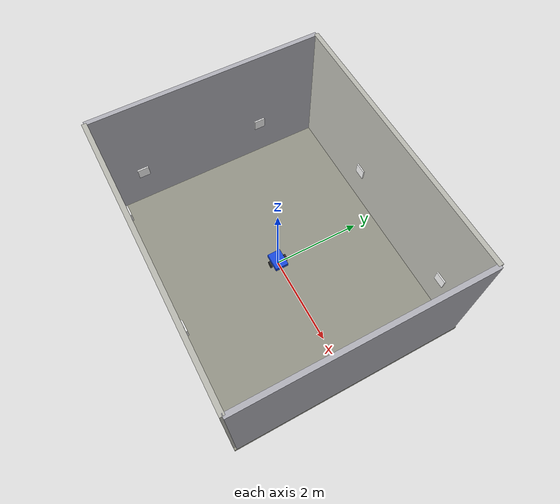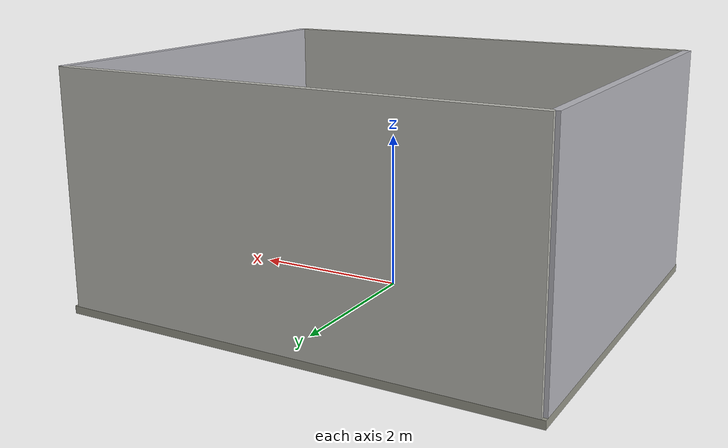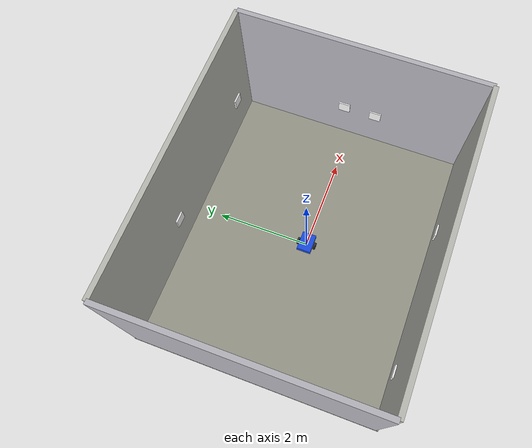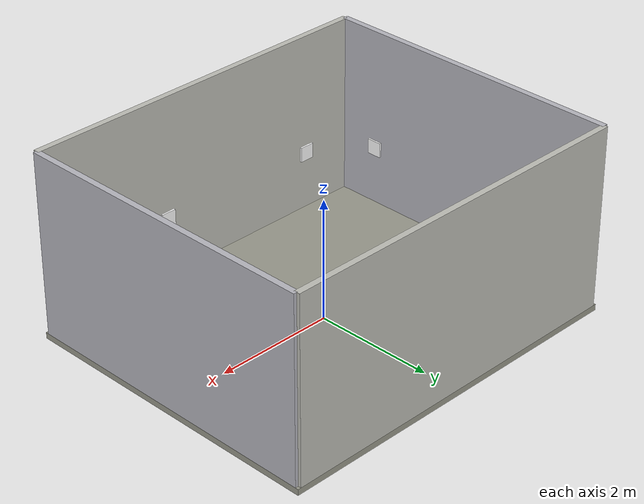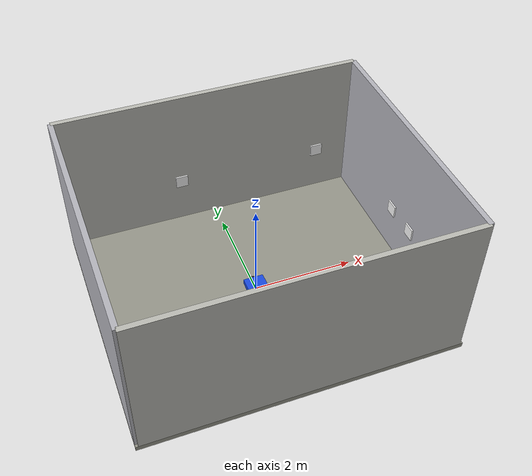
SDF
<?xml version="1.0" ?>
<sdf version="1.8">
<world name="ar_room">

  <!-- ── Physics & core plugins ─────────────────────────────────────── -->
  <physics name="1ms" type="ignored">
    <max_step_size>0.004</max_step_size>
    <real_time_factor>1.0</real_time_factor>
  </physics>

  <plugin filename="libignition-gazebo-physics-system.so"
          name="ignition::gazebo::systems::Physics"/>
  <plugin filename="libignition-gazebo-user-commands-system.so"
          name="ignition::gazebo::systems::UserCommands"/>
  <plugin filename="libignition-gazebo-scene-broadcaster-system.so"
          name="ignition::gazebo::systems::SceneBroadcaster"/>
  <plugin filename="libignition-gazebo-sensors-system.so"
          name="ignition::gazebo::systems::Sensors">
    <render_engine>ogre2</render_engine>
  </plugin>

  <!-- ── Lighting ───────────────────────────────────────────────────── -->
  <light type="directional" name="sun">
    <cast_shadows>true</cast_shadows>
    <pose>0 0 10 0 0 0</pose>
    <diffuse>0.85 0.85 0.85 1</diffuse>
    <specular>0.2 0.2 0.2 1</specular>
    <direction>-0.5 0.1 -0.9</direction>
  </light>
  <light type="point" name="room_light">
    <pose>0 0 2.8 0 0 0</pose>
    <diffuse>0.7 0.7 0.7 1</diffuse>
    <specular>0.1 0.1 0.1 1</specular>
    <attenuation>
      <range>10</range>
      <constant>0.5</constant>
      <linear>0.01</linear>
      <quadratic>0.001</quadratic>
    </attenuation>
  </light>

  <!-- ── Floor ──────────────────────────────────────────────────────── -->
  <model name="floor">
    <static>true</static>
    <pose>0 0 -0.05 0 0 0</pose>
    <link name="link">
      <visual name="visual">
        <geometry><box><size>6.2 5.2 0.10</size></box></geometry>
        <material>
          <ambient>0.60 0.60 0.55 1</ambient>
          <diffuse>0.60 0.60 0.55 1</diffuse>
          <specular>0.05 0.05 0.05 1</specular>
        </material>
      </visual>
      <collision name="collision">
        <geometry><box><size>6.2 5.2 0.10</size></box></geometry>
        <surface>
          <friction><ode><mu>1.0</mu><mu2>1.0</mu2></ode></friction>
        </surface>
      </collision>
    </link>
  </model>

  <!-- ── Walls ──────────────────────────────────────────────────────── -->
  <!-- South wall  y = -2.5 -->
  <model name="wall_south">
    <static>true</static>
    <pose>0 -2.55 1.5 0 0 0</pose>
    <link name="link">
      <visual name="v">
        <geometry><box><size>6.1 0.10 3.0</size></box></geometry>
        <material><ambient>0.75 0.75 0.72 1</ambient><diffuse>0.75 0.75 0.72 1</diffuse></material>
      </visual>
      <collision name="c">
        <geometry><box><size>6.1 0.10 3.0</size></box></geometry>
      </collision>
    </link>
  </model>

  <!-- North wall  y = +2.5 -->
  <model name="wall_north">
    <static>true</static>
    <pose>0 2.55 1.5 0 0 0</pose>
    <link name="link">
      <visual name="v">
        <geometry><box><size>6.1 0.10 3.0</size></box></geometry>
        <material><ambient>0.75 0.75 0.72 1</ambient><diffuse>0.75 0.75 0.72 1</diffuse></material>
      </visual>
      <collision name="c">
        <geometry><box><size>6.1 0.10 3.0</size></box></geometry>
      </collision>
    </link>
  </model>

  <!-- West wall  x = -3.0 -->
  <model name="wall_west">
    <static>true</static>
    <pose>-3.05 0 1.5 0 0 0</pose>
    <link name="link">
      <visual name="v">
        <geometry><box><size>0.10 5.1 3.0</size></box></geometry>
        <material><ambient>0.72 0.72 0.75 1</ambient><diffuse>0.72 0.72 0.75 1</diffuse></material>
      </visual>
      <collision name="c">
        <geometry><box><size>0.10 5.1 3.0</size></box></geometry>
      </collision>
    </link>
  </model>

  <!-- East wall  x = +3.0 -->
  <model name="wall_east">
    <static>true</static>
    <pose>3.05 0 1.5 0 0 0</pose>
    <link name="link">
      <visual name="v">
        <geometry><box><size>0.10 5.1 3.0</size></box></geometry>
        <material><ambient>0.72 0.72 0.75 1</ambient><diffuse>0.72 0.72 0.75 1</diffuse></material>
      </visual>
      <collision name="c">
        <geometry><box><size>0.10 5.1 3.0</size></box></geometry>
      </collision>
    </link>
  </model>

  <!-- tag 0 — South wall, left   (-1.50, -2.40, 1.0) -->
  <model name="tag_S1">
    <static>true</static>
    <pose>-2.10 -2.46 1.0 0 0 0</pose>
    <link name="link">
      <visual name="v">
        <geometry><box><size>0.25 0.03 0.25</size></box></geometry>
        <material>
          <ambient>1 1 1 1</ambient>
          <diffuse>1 1 1 1</diffuse>
          <specular>0 0 0 1</specular>
          <pbr>
            <metal>
              <albedo_map>file://materials/textures/aruco_id0.png</albedo_map>
            </metal>
          </pbr>
        </material>
      </visual>
    </link>
  </model>

  <!-- tag 1 — South wall, right  ( 1.20, -2.40, 1.0) -->
  <model name="tag_S2">
    <static>true</static>
    <pose>0.8 -2.46 1.0 0 0 0</pose>
    <link name="link">
      <visual name="v">
        <geometry><box><size>0.25 0.03 0.25</size></box></geometry>
        <material>
          <ambient>1 1 1 1</ambient>
          <diffuse>1 1 1 1</diffuse>
          <specular>0 0 0 1</specular>
          <pbr>
            <metal>
              <albedo_map>file://materials/textures/aruco_id0.png</albedo_map>
            </metal>
          </pbr>
        </material>
      </visual>
    </link>
  </model>

  <!-- tag 2 — North wall, left  (-0.30, +2.40, 1.0) -->
  <model name="tag_N1">
    <static>true</static>
    <pose>-0.70 2.46 1.0 0 0 0</pose>
    <link name="link">
      <visual name="v">
        <geometry><box><size>0.25 0.03 0.25</size></box></geometry>
        <material>
          <ambient>1 1 1 1</ambient>
          <diffuse>1 1 1 1</diffuse>
          <specular>0 0 0 1</specular>
          <pbr>
            <metal>
              <albedo_map>file://materials/textures/aruco_id0.png</albedo_map>
            </metal>
          </pbr>
        </material>
      </visual>
    </link>
  </model>

  <!-- tag 3 — North wall, right  ( 2.00, +2.40, 1.0) -->
  <model name="tag_N2">
    <static>true</static>
    <pose>2.30 2.46 1.0 0 0 0</pose>
    <link name="link">
      <visual name="v">
        <geometry><box><size>0.25 0.03 0.25</size></box></geometry>
        <material>
          <ambient>1 1 1 1</ambient>
          <diffuse>1 1 1 1</diffuse>
          <specular>0 0 0 1</specular>
          <pbr>
            <metal>
              <albedo_map>file://materials/textures/aruco_id0.png</albedo_map>
            </metal>
          </pbr>
        </material>
      </visual>
    </link>
  </model>

  <!-- tag 4 — West wall, bottom  (-2.90, -0.50, 1.0) -->
  <model name="tag_W1">
    <static>true</static>
    <pose>-2.96 -1.80 1.0 0 0 0</pose>
    <link name="link">
      <visual name="v">
        <geometry><box><size>0.03 0.25 0.25</size></box></geometry>
        <material>
          <ambient>1 1 1 1</ambient>
          <diffuse>1 1 1 1</diffuse>
          <specular>0 0 0 1</specular>
          <pbr>
            <metal>
              <albedo_map>file://materials/textures/aruco_id0.png</albedo_map>
            </metal>
          </pbr>
        </material>
      </visual>
    </link>
  </model>

  <!-- tag 5 — West wall, top     (-2.90, +1.50, 1.0) -->
  <model name="tag_W2">
    <static>true</static>
    <pose>-2.96 1.10 1.0 0 0 0</pose>
    <link name="link">
      <visual name="v">
        <geometry><box><size>0.03 0.25 0.25</size></box></geometry>
        <material>
          <ambient>1 1 1 1</ambient>
          <diffuse>1 1 1 1</diffuse>
          <specular>0 0 0 1</specular>
          <pbr>
            <metal>
              <albedo_map>file://materials/textures/aruco_id0.png</albedo_map>
            </metal>
          </pbr>
        </material>
      </visual>
    </link>
  </model>

  <!-- tag 6 — East wall, top     (+2.90, +0.50, 1.0) -->
  <model name="tag_E1">
    <static>true</static>
    <pose>2.96 0.20 1.0 0 0 0</pose>
    <link name="link">
      <visual name="v">
        <geometry><box><size>0.03 0.25 0.25</size></box></geometry>
        <material>
          <ambient>1 1 1 1</ambient>
          <diffuse>1 1 1 1</diffuse>
          <specular>0 0 0 1</specular>
          <pbr>
            <metal>
              <albedo_map>file://materials/textures/aruco_id0.png</albedo_map>
            </metal>
          </pbr>
        </material>
      </visual>
    </link>
  </model>

  <!-- tag 7 — East wall, bottom  (+2.90, -1.50, 1.0) -->
  <model name="tag_E2">
    <static>true</static>
    <pose>2.96 -0.50 1.0 0 0 0</pose>
    <link name="link">
      <visual name="v">
        <geometry><box><size>0.03 0.25 0.25</size></box></geometry>
        <material>
          <ambient>1 1 1 1</ambient>
          <diffuse>1 1 1 1</diffuse>
          <specular>0 0 0 1</specular>
          <pbr>
            <metal>
              <albedo_map>file://materials/textures/aruco_id0.png</albedo_map>
            </metal>
          </pbr>
        </material>
      </visual>
    </link>
  </model>

  <model name="robot">
    <!-- Start position: centre of room, facing east (+x) -->
    <pose>0 0 0 0 0 0</pose>

    <!-- ── Chassis ──────────────────────────────────────────────── -->
    <link name="chassis">
      <!-- centre at z = wheel_radius + half_chassis = 0.075 + 0.05 = 0.125 -->
      <pose>0 0 0.125 0 0 0</pose>
      <inertial>
        <mass>2.0</mass>
        <inertia>
          <ixx>0.0200</ixx><ixy>0</ixy><ixz>0</ixz>
          <iyy>0.0467</iyy><iyz>0</iyz>
          <izz>0.0567</izz>
        </inertia>
      </inertial>
      <visual name="visual">
        <geometry><box><size>0.40 0.30 0.10</size></box></geometry>
        <material>
          <ambient>0.10 0.30 0.90 1</ambient>
          <diffuse>0.10 0.30 0.90 1</diffuse>
        </material>
      </visual>
      <collision name="collision">
        <geometry><box><size>0.40 0.30 0.10</size></box></geometry>
      </collision>

      <!-- ── Camera sensor (forward-facing) ── -->
      <sensor name="camera" type="camera">
        <!-- mounted at front-centre of chassis, 5 cm above chassis top -->
        <pose>0.00 0 0.12 0 -0.40 0</pose>
        <camera>
          <horizontal_fov>1.0472</horizontal_fov>
          <image>
            <width>640</width>
            <height>480</height>
          </image>
          <clip><near>0.05</near><far>10.0</far></clip>
        </camera>
        <always_on>true</always_on>
        <update_rate>10</update_rate>
        <visualize>false</visualize>
        <topic>/camera/image</topic>
      </sensor>
    </link>

    <!-- ── Left wheel ───────────────────────────────────────────── -->
    <link name="left_wheel">
      <pose>0 0.185 0.075 -1.5707963 0 0</pose>
      <inertial>
        <mass>0.3</mass>
        <inertia>
          <ixx>0.000844</ixx><ixy>0</ixy><ixz>0</ixz>
          <iyy>0.000844</iyy><iyz>0</iyz>
          <izz>0.001519</izz>
        </inertia>
      </inertial>
      <visual name="visual">
        <geometry><cylinder><radius>0.075</radius><length>0.04</length></cylinder></geometry>
        <material><ambient>0.2 0.2 0.2 1</ambient><diffuse>0.2 0.2 0.2 1</diffuse></material>
      </visual>
      <collision name="collision">
        <geometry><cylinder><radius>0.075</radius><length>0.04</length></cylinder></geometry>
        <surface>
          <friction><ode><mu>1.0</mu><mu2>0.5</mu2></ode></friction>
        </surface>
      </collision>
    </link>

    <!-- ── Right wheel ──────────────────────────────────────────── -->
    <link name="right_wheel">
      <pose>0 -0.185 0.075 -1.5707963 0 0</pose>
      <inertial>
        <mass>0.3</mass>
        <inertia>
          <ixx>0.000844</ixx><ixy>0</ixy><ixz>0</ixz>
          <iyy>0.000844</iyy><iyz>0</iyz>
          <izz>0.001519</izz>
        </inertia>
      </inertial>
      <visual name="visual">
        <geometry><cylinder><radius>0.075</radius><length>0.04</length></cylinder></geometry>
        <material><ambient>0.2 0.2 0.2 1</ambient><diffuse>0.2 0.2 0.2 1</diffuse></material>
      </visual>
      <collision name="collision">
        <geometry><cylinder><radius>0.075</radius><length>0.04</length></cylinder></geometry>
        <surface>
          <friction><ode><mu>1.0</mu><mu2>0.5</mu2></ode></friction>
        </surface>
      </collision>
    </link>

    <!-- ── Rear caster ──────────────────────────────────────────── -->
    <link name="caster">
      <pose>-0.15 0 0.030 0 0 0</pose>
      <inertial>
        <mass>0.05</mass>
        <inertia>
          <ixx>0.000012</ixx><ixy>0</ixy><ixz>0</ixz>
          <iyy>0.000012</iyy><iyz>0</iyz>
          <izz>0.000012</izz>
        </inertia>
      </inertial>
      <visual name="visual">
        <geometry><sphere><radius>0.030</radius></sphere></geometry>
        <material><ambient>0.5 0.5 0.5 1</ambient><diffuse>0.5 0.5 0.5 1</diffuse></material>
      </visual>
      <collision name="collision">
        <geometry><sphere><radius>0.030</radius></sphere></geometry>
        <surface>
          <friction><ode><mu>0.001</mu><mu2>0.001</mu2></ode></friction>
        </surface>
      </collision>
    </link>

    <!-- ── Joints ───────────────────────────────────────────────── -->
    <joint name="left_wheel_joint" type="revolute">
      <parent>chassis</parent>
      <child>left_wheel</child>
      <axis>
        <xyz>0 0 1</xyz>   <!-- local z of rotated wheel = world y -->
        <limit><lower>-1e16</lower><upper>1e16</upper></limit>
        <dynamics><friction>0.01</friction></dynamics>
      </axis>
    </joint>

    <joint name="right_wheel_joint" type="revolute">
      <parent>chassis</parent>
      <child>right_wheel</child>
      <axis>
        <xyz>0 0 1</xyz>
        <limit><lower>-1e16</lower><upper>1e16</upper></limit>
        <dynamics><friction>0.01</friction></dynamics>
      </axis>
    </joint>

    <joint name="caster_joint" type="ball">
      <parent>chassis</parent>
      <child>caster</child>
    </joint>

    <!-- ── Plugins ──────────────────────────────────────────────── -->
    <plugin filename="libignition-gazebo-diff-drive-system.so"
            name="ignition::gazebo::systems::DiffDrive">
      <left_joint>left_wheel_joint</left_joint>
      <right_joint>right_wheel_joint</right_joint>
      <wheel_separation>0.37</wheel_separation>
      <wheel_radius>0.075</wheel_radius>
      <odom_publish_frequency>20</odom_publish_frequency>
      <topic>/cmd_vel</topic>
      <odom_topic>/odom</odom_topic>
      <frame_id>odom</frame_id>
      <child_frame_id>base_link</child_frame_id>
      <min_velocity>-1.5</min_velocity>
      <max_velocity>1.5</max_velocity>
      <min_acceleration>-3.0</min_acceleration>
      <max_acceleration>3.0</max_acceleration>
    </plugin>

  </model>  <!-- end robot -->

</world>
</sdf>
